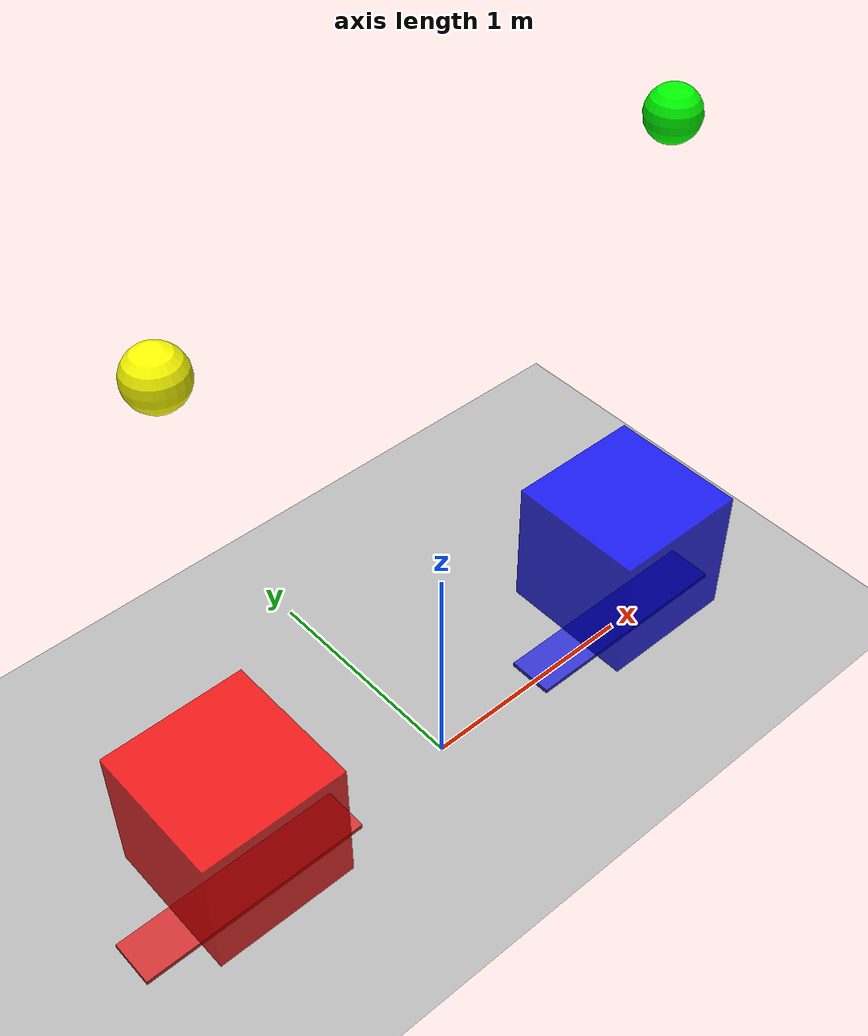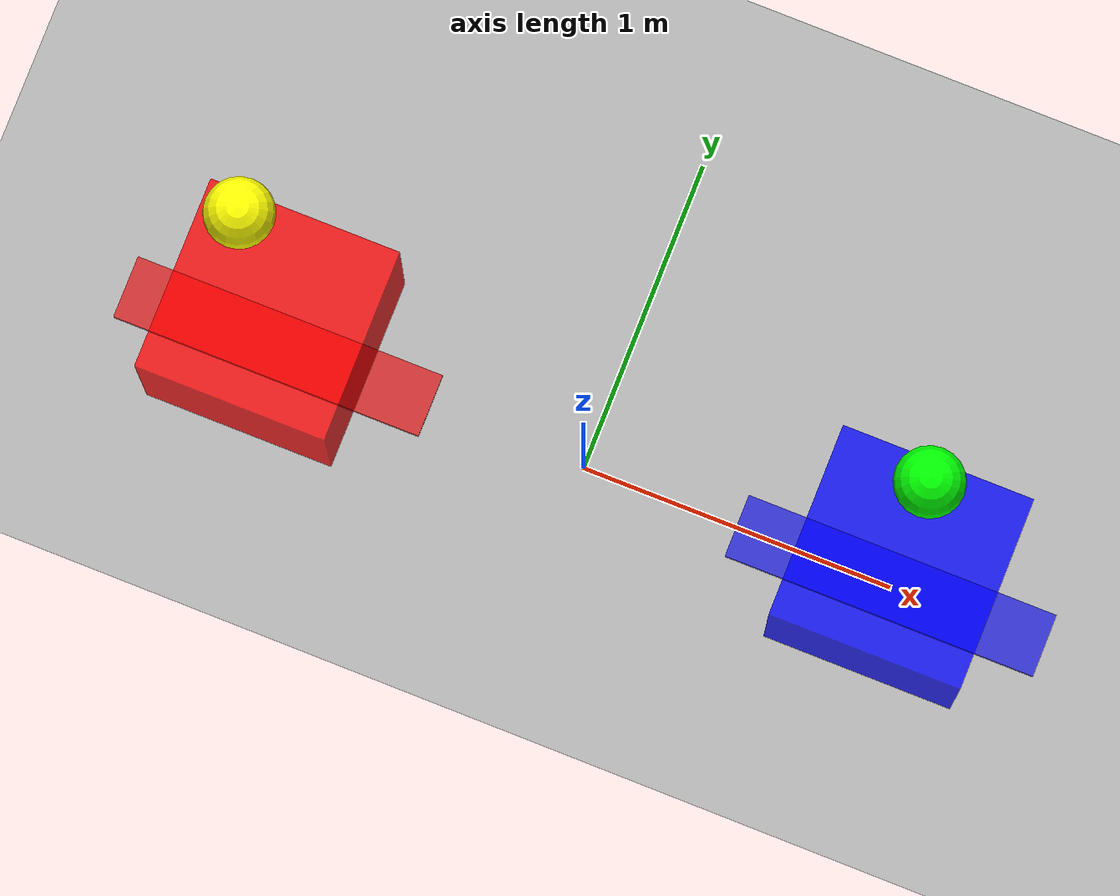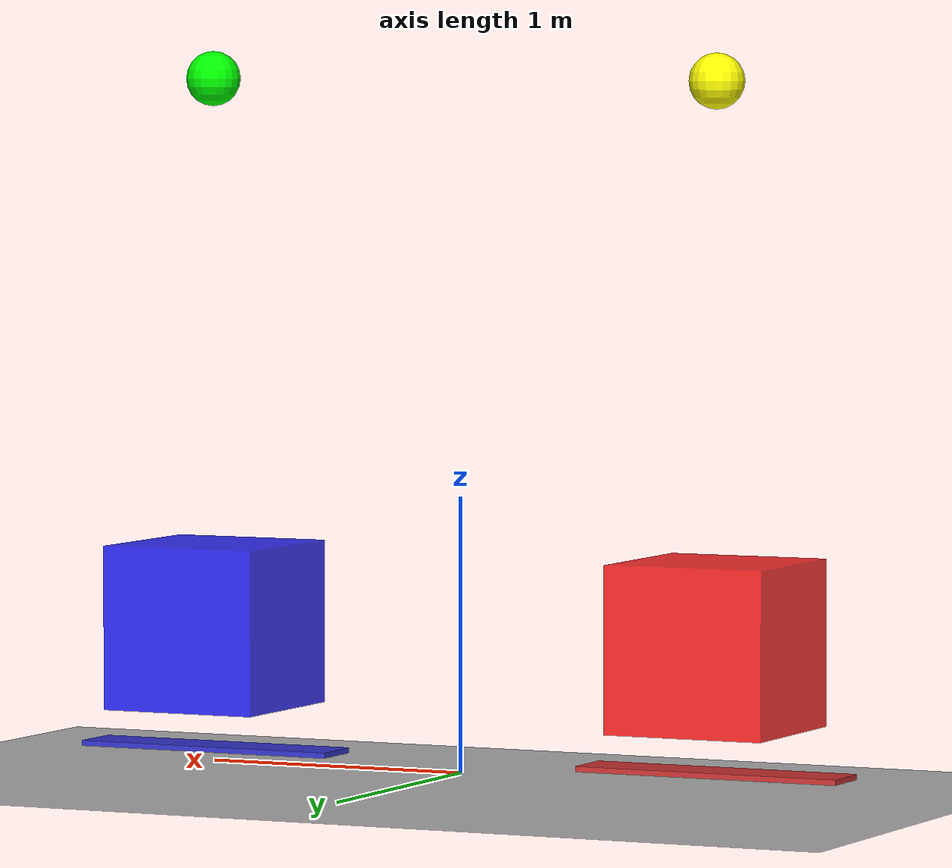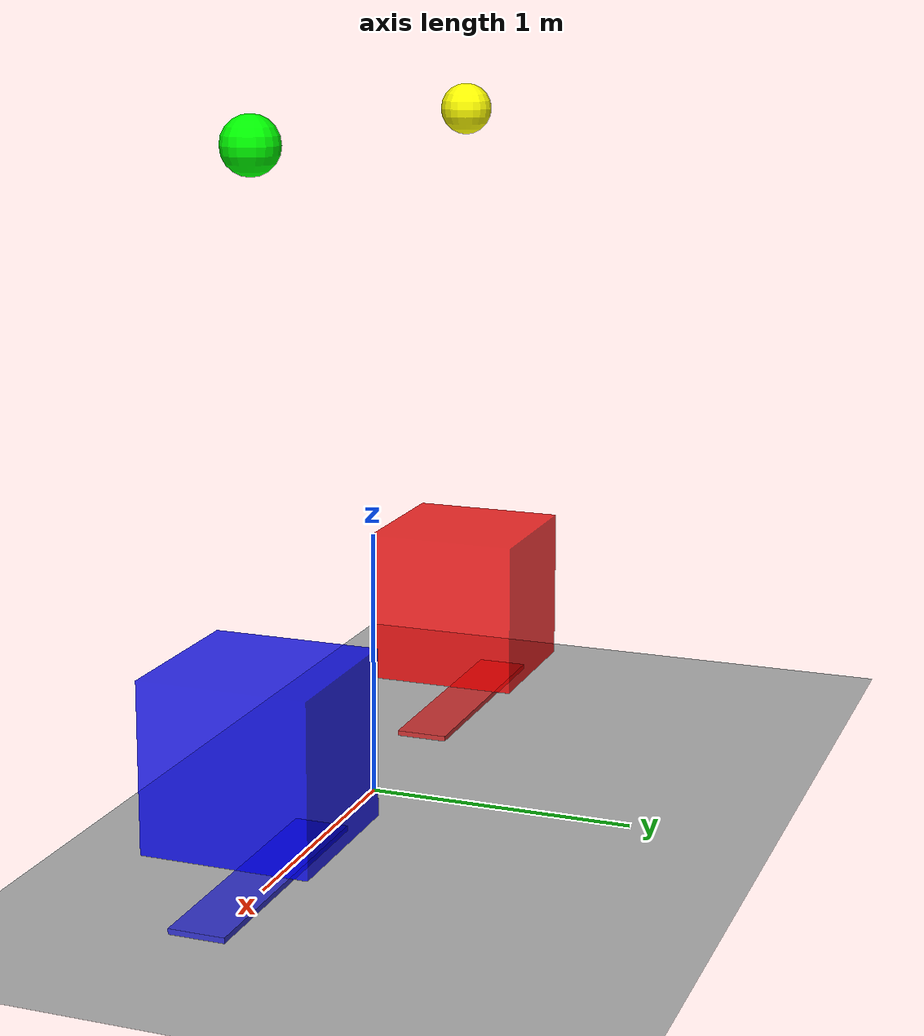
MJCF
<mujoco model="two_boxes_collision_test">
    <option gravity="0 0 -9.81" timestep="0.002" />

    <visual>
        <global offwidth="1280" offheight="720"/>
    </visual>

    <worldbody>
        <!-- Camera positioned to see both boxes clearly -->
        <camera name="main_cam" mode="fixed" pos="0 -3 1.5" euler="80 0 0"/>

        <!-- Ground plane -->
        <geom name="floor" type="plane" pos="0 0 0" size="3 3 0.1"
              rgba="0.7 0.7 0.7 1" contype="1" conaffinity="1" />

        <!-- Box 1: LEFT SIDE - Collision DISABLED (contype=0, conaffinity=0) -->
        <!-- This box should be visible but not collide with anything -->
        <geom name="box_no_collision" type="box" pos="-1 0 0.5" size="0.3 0.3 0.3"
              rgba="1 0 0 0.8" contype="0" conaffinity="0" />

        <!-- Label plane for Box 1 -->
        <geom name="label1" type="box" pos="-1 0 0.05" size="0.5 0.1 0.01"
              rgba="0.8 0.2 0.2 1" contype="0" conaffinity="0" />

        <!-- Box 2: RIGHT SIDE - Collision ENABLED (contype=1, conaffinity=1) -->
        <!-- This box should be visible AND collide with objects -->
        <geom name="box_with_collision" type="box" pos="1 0 0.5" size="0.3 0.3 0.3"
              rgba="0 0 1 0.8" contype="1" conaffinity="1" />

        <!-- Label plane for Box 2 -->
        <geom name="label2" type="box" pos="1 0 0.05" size="0.5 0.1 0.01"
              rgba="0.2 0.2 0.8 1" contype="0" conaffinity="0" />

        <!-- Test balls to drop on both boxes -->
        <!-- Ball 1: Will fall through the red box (no collision) -->
        <body name="ball1" pos="-1 0 2.5">
            <joint name="ball1_free" type="free" />
            <geom name="ball1_geom" type="sphere" size="0.1" density="500"
                  rgba="1 1 0 1" contype="1" conaffinity="1" />
        </body>

        <!-- Ball 2: Will land on the blue box (collision enabled) -->
        <body name="ball2" pos="1 0 2.5">
            <joint name="ball2_free" type="free" />
            <geom name="ball2_geom" type="sphere" size="0.1" density="500"
                  rgba="0 1 0 1" contype="1" conaffinity="1" />
        </body>
    </worldbody>
</mujoco>
